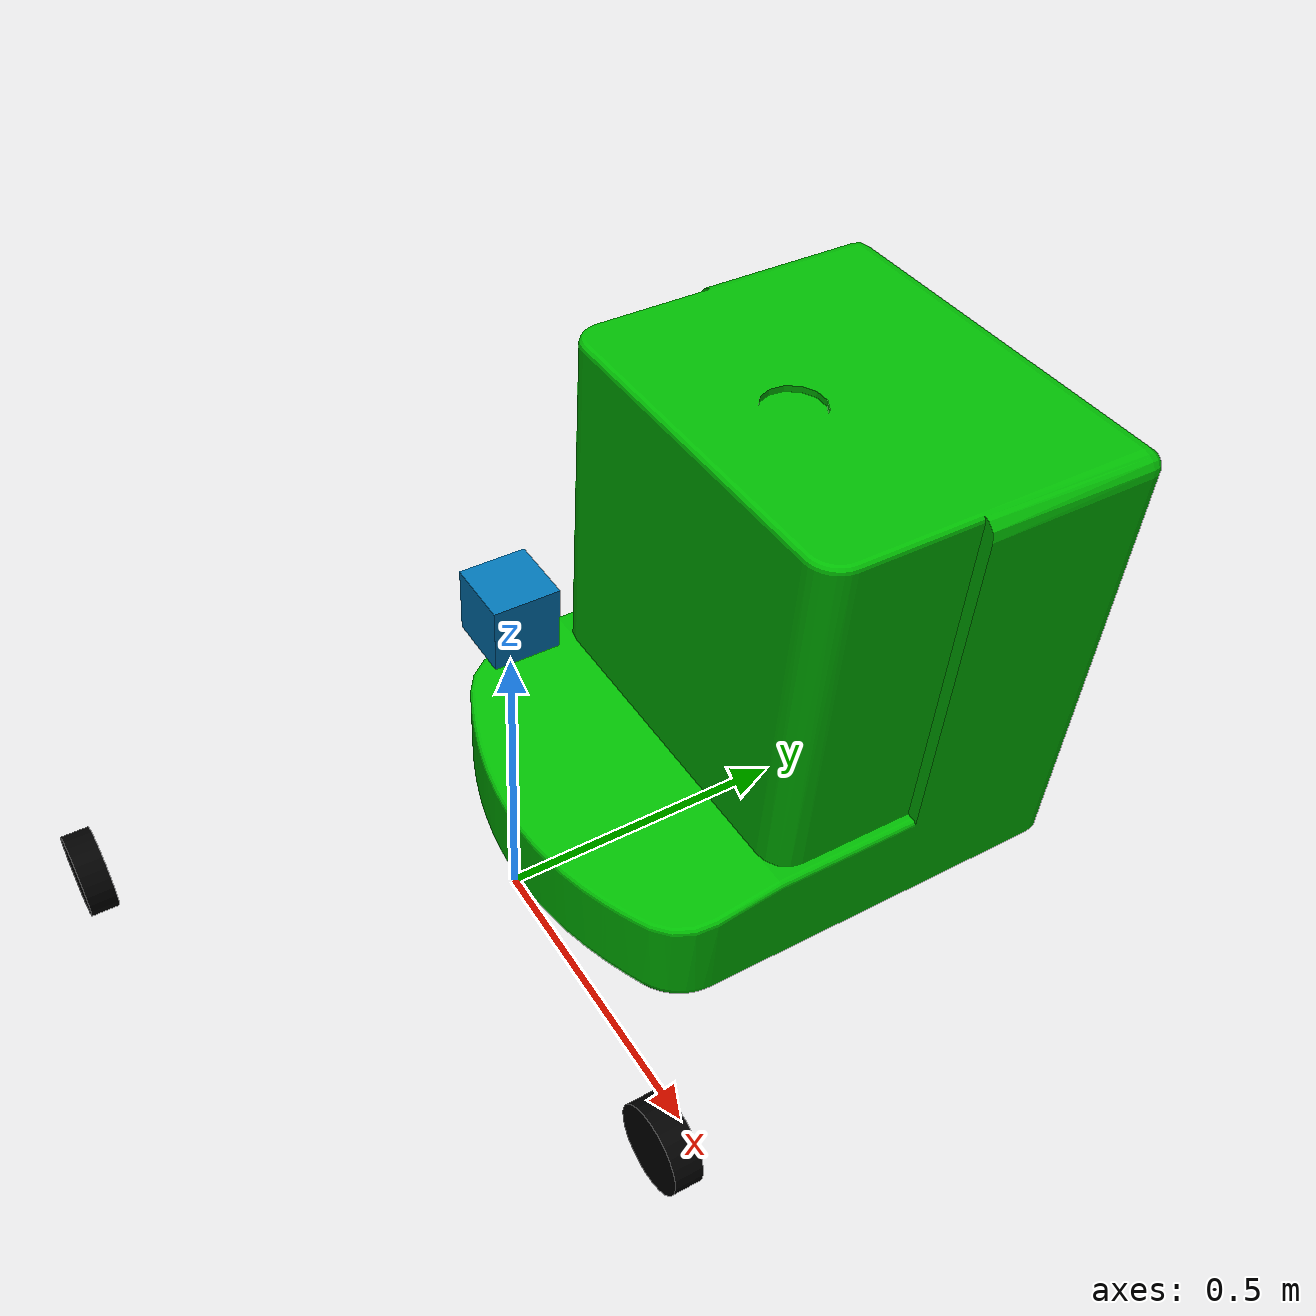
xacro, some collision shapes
<?xml version="1.0"?>
<robot xmlns:xacro="http://ros.org/wiki/xacro" name="r3d4">

  <!-- 车体宽度-->
  <xacro:property name="basewidth" value="1.2" />
  <!-- 车体长度-->
  <xacro:property name="baselen" value="1.4" />
  <!-- 车体高度-->
  <xacro:property name="basehight" value="1.2" />
  <!-- 前车轮直径-->
  <xacro:property name="wheeldiam" value="0.25" />
  <!-- 驱动轮直径-->
  <xacro:property name="wheeldiam" value="0.15" />
  <xacro:property name="pi" value="3.1415" />

  <material name="black">
    <color rgba="0 0 0 1"/>
  </material>

  <material name="white">
    <color rgba="1 1 1 1"/>
  </material>

  <xacro:macro name="default_inertial" params="mass">
    <inertial>
      <mass value="${mass}" />
      <inertia ixx="1.0" ixy="0.0" ixz="0.0" iyy="1.0" iyz="0.0" izz="1.0" />
    </inertial>
  </xacro:macro>

  <link name="base_link">
    <inertial>
      <origin xyz="5.0405E-06 0.52444 0.3767" rpy="0 0 0" />
      <mass value="308.43" />
      <inertia ixx="26.618208369011" ixy="-0.000487476283401316" ixz="-0.000523003330073589" iyy="27.4789997792547" iyz="-2.68450909552608" izz="22.372352153342" />
    </inertial>
    <visual>
      <origin xyz="0 0 0" rpy="1.5707963267949 0 0" />
      <geometry>
        <mesh filename="package://r3d4/meshes/AGV_base.STL" />
      </geometry>
      <material name="">
        <color rgba="0 0.71765 0.0078431 1" />
      </material>
    </visual>
    <collision>
      <origin xyz="0 0 0" rpy="1.5707963267949 0 0" />
      <geometry>
        <mesh filename="package://r3d4/meshes/AGV_base.STL" />
      </geometry>
    </collision>
  </link>

  <link name="caster_wheel">
    <visual>
      <origin xyz="0 0 0" rpy="${pi/2} 0 0" />
      <geometry>
        <cylinder radius="${wheeldiam/2}" length="0.05"/>
      </geometry>
      <material name="black"/>
    </visual>
    <collision>
      <origin xyz="0 0 0" rpy="${pi/2} 0 0" />
      <geometry>
        <cylinder radius="${wheeldiam/2}" length="0.1"/>
      </geometry>
    </collision>
    <xacro:default_inertial mass="1"/>
  </link>

  <joint name="caster_wheel_joint" type="fixed">
    <axis xyz="0 1 0" rpy="0 0 0" />
    <parent link="base_link"/>
    <child link="caster_wheel"/>
    <origin xyz="${baselen*1/3} 0 -${wheeldiam/2+.05}" rpy="0 0 0"/>
  </joint>

  <gazebo reference="caster_wheel">
    <mu1 value="0.0"/>
    <mu2 value="0.0"/>
    <material>Gazebo/Grey</material>
  </gazebo>

  <gazebo>
    <plugin name="gazebo_ros_control" filename="libgazebo_ros_control.so">
      <robotNamespace>/r3d4</robotNamespace>
      <robotSimType>gazebo_ros_control/DefaultRobotHWSim</robotSimType>
    </plugin>
  </gazebo>

  <xacro:macro name="wheel" params="prefix suffix reflect mirror">
    <link name="${prefix}_${suffix}_wheel">
      <visual>
        <origin xyz="0 0 0" rpy="${pi/2} 0 0" />
        <geometry>
          <cylinder radius="${wheeldiam/2}" length="0.05"/>
        </geometry>
        <material name="black"/>
      </visual>
      <collision>
        <origin xyz="0 0 0" rpy="${pi/2} 0 0" />
        <geometry>
          <cylinder radius="${wheeldiam/2}" length="0.1"/>
        </geometry>
      </collision>
      <xacro:default_inertial mass="1"/>
    </link>

    <joint name="${prefix}_${suffix}_wheel_joint" type="continuous">
      <axis xyz="0 1 0" rpy="0 0 0" />
      <parent link="base_link"/>
      <child link="${prefix}_${suffix}_wheel"/>
      <origin xyz="${baselen*reflect/3}
                   ${basewidth*mirror/2} -${wheeldiam/2+.05}" rpy="0 0 0"/>
      <dynamics damping="0.7"/>
    </joint>

    <transmission name="${prefix}_${suffix}_tran">
      <type>transmission_interface/SimpleTransmission</type>
      <joint name="${prefix}_${suffix}_wheel_joint">
        <hardwareInterface>hardware_interface/VelocityJointInterface</hardwareInterface>
      </joint>
      <actuator name="${prefix}_${suffix}_motor">
        <hardwareInterface>hardware_interface/VelocityJointInterface</hardwareInterface>
        <mechanicalReduction>1</mechanicalReduction>
      </actuator>
    </transmission>

    <gazebo reference="${prefix}_${suffix}_wheel">
      <mu1 value="20.0"/>
      <mu2 value="10.0"/>
    </gazebo>
  </xacro:macro>
  <xacro:wheel prefix="right" suffix="back" reflect="-1" mirror="-1"/>
  <xacro:wheel prefix="left" suffix="back" reflect="-1" mirror="1"/>

  <!-- Differential drive controller  -->
  <gazebo>
    <plugin name="differential_drive_controller" filename="libgazebo_ros_diff_drive.so">
      <rosDebugLevel>Debug</rosDebugLevel>
      <publishWheelTF>false</publishWheelTF>
      <robotNamespace></robotNamespace>
      <publishTf>1</publishTf>
      <publishWheelJointState>false</publishWheelJointState>
      <alwaysOn>true</alwaysOn>
      <updateRate>50.0</updateRate>
      <leftJoint>left_back_wheel_joint</leftJoint>
      <rightJoint>right_back_wheel_joint</rightJoint>
      <wheelSeparation>${basewidth}</wheelSeparation>
      <wheelDiameter>${wheeldiam}</wheelDiameter>
      <broadcastTF>1</broadcastTF>
      <wheelTorque>30</wheelTorque>
      <wheelAcceleration>1.8</wheelAcceleration>
      <commandTopic>/cmd_vel</commandTopic>
      <odometryFrame>/odom</odometryFrame>
      <odometryTopic>/odom</odometryTopic>
      <robotBaseFrame>/base_link</robotBaseFrame>
    </plugin>
  </gazebo>

  <!-- Hokuyo Laser -->
  <link name="hokuyo_link">
    <collision>
      <origin xyz="0 0 0" rpy="0 0 0"/>
      <geometry>
        <box size="0.1 0.1 0.1"/>
      </geometry>
    </collision>

    <visual>
      <origin xyz="0 0 0" rpy="0 0 0"/>
      <geometry>
        <mesh filename="package://rep_ryw/meshes/hokuyo.dae"/>
      </geometry>
    </visual>

    <inertial>
      <mass value="1e-5" />
      <origin xyz="0 0 0" rpy="0 0 0"/>
      <inertia ixx="1e-6" ixy="0" ixz="0" iyy="1e-6" iyz="0" izz="1e-6" />
    </inertial>
  </link>

  <joint name="hokuyo_joint" type="fixed">
    <axis xyz="0 1 0" />
    <origin xyz="0 0 ${basehight/2}" rpy="0 0 0"/>
    <parent link="base_link"/>
    <child link="hokuyo_link"/>
  </joint>

  <!-- hokuyo -->
  <gazebo reference="hokuyo_link">
    <sensor type="gpu_ray" name="head_hokuyo_sensor">
      <pose>0 0 0 0 0 0</pose>
      <visualize>false</visualize>
      <update_rate>40</update_rate>
      <ray>
        <scan>
          <horizontal>
            <samples>720</samples>
            <resolution>1</resolution>
            <min_angle>-1.570796</min_angle>
            <max_angle>1.570796</max_angle>
          </horizontal>
        </scan>
        <range>
          <min>0.10</min>
          <max>30.0</max>
          <resolution>0.01</resolution>
        </range>
        <noise>
          <type>gaussian</type>
          <mean>0.0</mean>
          <stddev>0.01</stddev>
        </noise>
      </ray>
      <plugin name="gazebo_ros_head_hokuyo_controller" filename="libgazebo_ros_gpu_laser.so">
        <topicName>/r3d4/laser/scan</topicName>
        <frameName>/hokuyo_link</frameName>
      </plugin>
    </sensor>
  </gazebo>

</robot>
